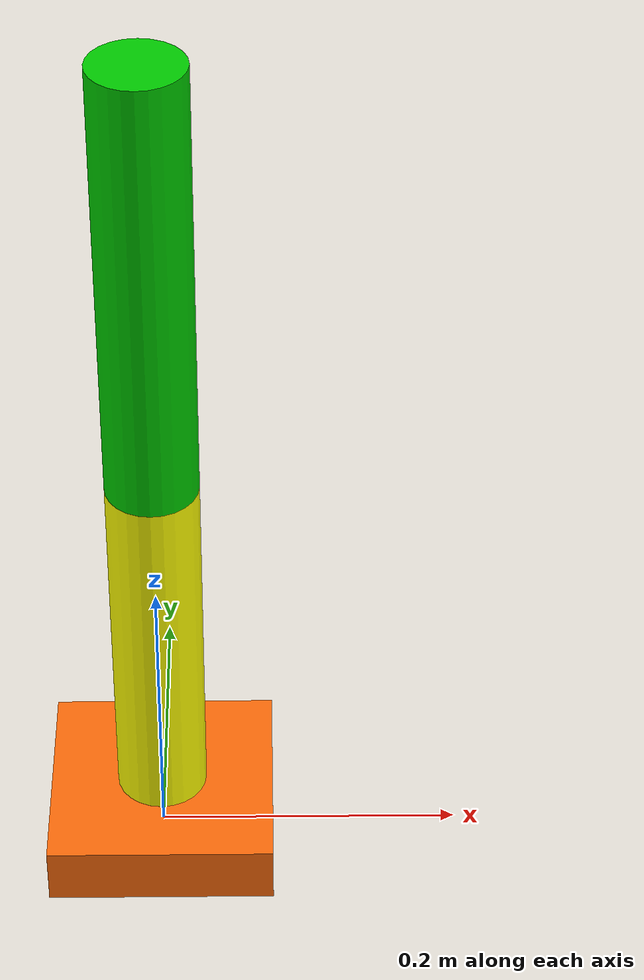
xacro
<?xml version="1.0"?>
<robot name="arm" xmlns:xacro="http://www.ros.org/wiki/xacro">
    <xacro:include filename="materials.xacro" />
    <xacro:include filename="arm.ros2_control.xacro" />

    <xacro:property name="arm_base_length" value="0.15" />
    <xacro:property name="arm_base_width" value="0.15" />
    <xacro:property name="arm_base_height" value="0.04" />
    <xacro:property name="lower_arm_radius" value="0.03" />
    <xacro:property name="lower_arm_length" value="0.25" />
    <xacro:property name="upper_arm_radius" value="0.03" />
    <xacro:property name="upper_arm_length" value="0.3" />

    <link name="arm_base_link">
        <visual>
            <geometry>
                <box size="${arm_base_length} ${arm_base_width} ${arm_base_height}" />
            </geometry>
            <origin xyz="0 0 ${arm_base_height / 2.0}" rpy="0 0 0" />
            <material name="orange" />
        </visual>
    </link>

    <link name="lower_arm_link">
        <visual>
            <geometry>
                <cylinder radius="${lower_arm_radius}" length="${lower_arm_length}" />
            </geometry>
            <origin xyz="0 0 ${lower_arm_length / 2.0}" rpy="0 0 0" />
            <material name="yellow" />
        </visual>
    </link>

    <link name="upper_arm_link">
        <visual>
            <geometry>
                <cylinder radius="${upper_arm_radius}" length="${upper_arm_length}" />
            </geometry>
            <origin xyz="0 0 ${upper_arm_length / 2.0}" rpy="0 0 0" />
            <material name="green" />
        </visual>
    </link>

    <joint name="lower_arm_joint" type="revolute">
        <parent link="arm_base_link" />
        <child link="lower_arm_link" />
        <origin xyz="0 0 ${arm_base_height}" rpy="0 0 0" />
        <axis xyz="0 1 0" />
        <limit lower="0" upper="${pi/2}" effort="10" velocity="10" />
    </joint>

    <joint name="upper_arm_joint" type="revolute">
        <parent link="lower_arm_link" />
        <child link="upper_arm_link" />
        <origin xyz="0 0 ${lower_arm_length}" rpy="0 0 0" />
        <axis xyz="0 1 0" />
        <limit lower="0" upper="${pi/2}" effort="10" velocity="10" />
    </joint>

</robot>

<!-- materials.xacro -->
<robot xmlns:xacro="http://www.ros.org/wiki/xacro">

    <material name="orange">
        <color rgba="${255/255} ${108/255} ${10/255} 1.0"/>
    </material>

    <material name="yellow">
        <color rgba="1.0 1.0 0 1" />
    </material>

    <material name="green">
    <color rgba="0.0 0.8 0.0 1.0"/>
    </material>

</robot>
